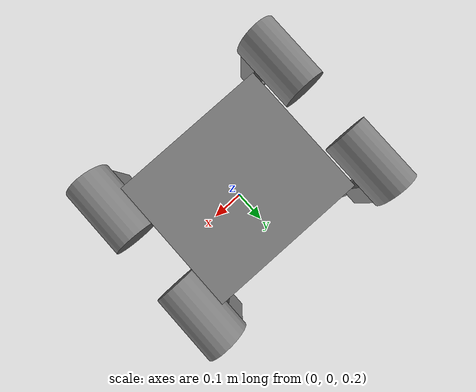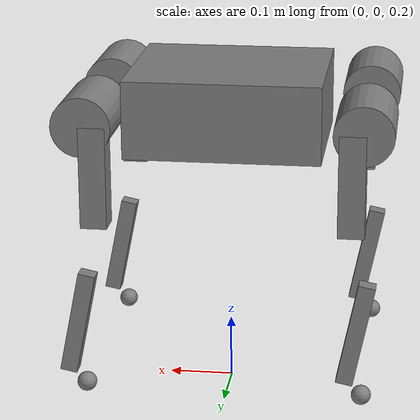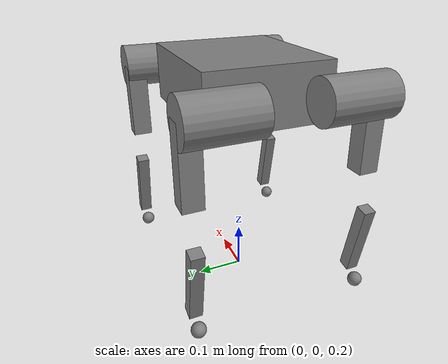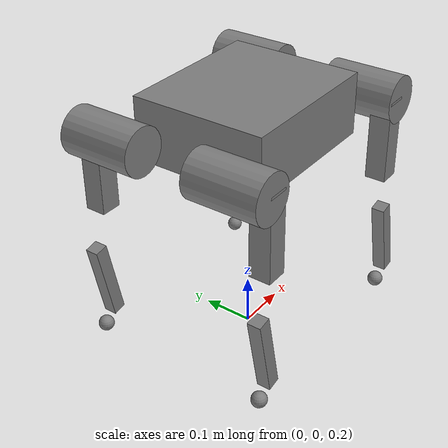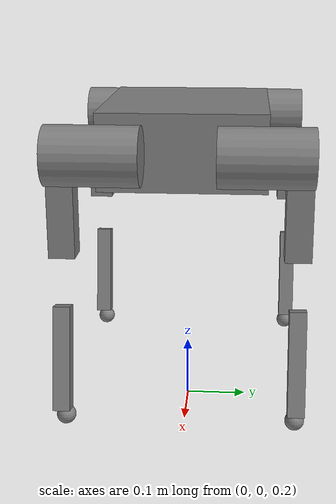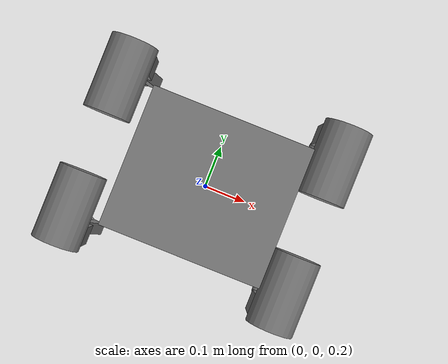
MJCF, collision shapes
<?xml version="1.0" encoding="utf-8"?>
<mujoco model="sparq">

  <compiler angle="radian" autolimits="true"/>
  <option timestep="0.002" gravity="0 0 -9.81"/>

  <default>
    <default class="visual">
      <geom type="mesh" contype="0" conaffinity="0" group="2"/>
    </default>
    <default class="collision">
      <geom contype="1" conaffinity="1" group="3"/>
      <default class="foot">
          <geom type="sphere" size="0.03" priority="1" condim="6"
              friction="0.8 0.02 0.02"/>
      </default>
    </default>
  </default>

  <asset>
    <material name="silver" rgba="0.75 0.75 0.72 1"/>
    <mesh name="FL_Hip_pitch_link_mesh" file="meshes/FL_Hip_pitch_link.stl" scale="0.001 0.001 0.001"/>
    <mesh name="FL_Hip_roll_link_mesh" file="meshes/FL_Hip_roll_link.stl" scale="0.001 0.001 0.001"/>
    <mesh name="FL_Knee_link_mesh" file="meshes/FL_Knee_link.stl" scale="0.001 0.001 0.001"/>
    <mesh name="FR_Knee_link_mesh" file="meshes/FR_Calf_link.stl" scale="0.001 0.001 0.001"/>
    <mesh name="FR_Hip_pitch_link_mesh" file="meshes/FR_Hip_pitch_link.stl" scale="0.001 0.001 0.001"/>
    <mesh name="FR_Hip_roll_link_mesh" file="meshes/FR_Hip_roll_link.stl" scale="0.001 0.001 0.001"/>
    <mesh name="RL_Hip_pitch_link_mesh" file="meshes/RL_Hip_pitch_link.stl" scale="0.001 0.001 0.001"/>
    <mesh name="RL_Hip_roll_link_mesh" file="meshes/RL_Hip_roll_link.stl" scale="0.001 0.001 0.001"/>
    <mesh name="RL_Knee_link_mesh" file="meshes/RL_Knee_link.stl" scale="0.001 0.001 0.001"/>
    <mesh name="RR_Hip_pitch_link_mesh" file="meshes/RR_Hip_pitch_link.stl" scale="0.001 0.001 0.001"/>
    <mesh name="RR_Hip_roll_link_mesh" file="meshes/RR_Hip_roll_link.stl" scale="0.001 0.001 0.001"/>
    <mesh name="RR_Knee_link_mesh" file="meshes/RR_Knee_link.stl" scale="0.001 0.001 0.001"/>
    <mesh name="base_link_mesh" file="meshes/base_link.stl" scale="0.001 0.001 0.001"/>
  </asset>

  <worldbody>
    <body name="base_link" pos="0 0 0.7" quat="1 0 0 0">
      <inertial
          pos="-0.0365223217758897 -0.00142802720953009 -0.0353784770833775"
          mass="4.20080790024601"
          fullinertia="0.028593 0.058857 0.081298 0.000372 0.000256 -5.7e-05"/>
      <freejoint/>

      <geom type="box" pos="0 0 -0.04" size="0.15 0.13 0.06" class="collision"/>
      <geom name="base_link_geom" type="mesh" mesh="base_link_mesh" material="silver" class="visual"/>
      <site name="base_link_imu" pos="0 0 0" quat="1 0 0 0" size="0.005"/>
      <site name="imu" pos="0 0 0" quat="1 0 0 0" size="0.005"/>

      <body name="FL_Hip_roll_link" pos="0.1535 0.105 -0.0345">
        <joint name="FL_HR" type="hinge" axis="1 0 0" limited="true" range="-0.698132 0.698132"/>
        <inertial pos="0.047012839260508 -0.0190648895916663 -1.01507808360213e-07" mass="0.433649965152763" fullinertia="0.000222 0.000329 0.000243 1.7e-05 0 0"/>
        <geom type="cylinder" pos="0.045 0.02 0" size="0.045 0.07" euler="1.57 0 0" class="collision"/>
        <geom name="FL_Hip_roll_link_geom" type="mesh" mesh="FL_Hip_roll_link_mesh" material="silver" class="visual"/>

        <body name="FL_Hip_pitch_link" pos="0.049 0.0025 0">
          <joint name="FL_HP" type="hinge" axis="0 1 0" limited="true" range="-1.570796 1.570796"/>
          <inertial pos="-0.00494463575772652 0.0456363406337958 -0.0345572194599785" mass="0.763721119653306" fullinertia="0.004042 0.003973 0.000679 9.1e-05 -0.000298 0.000633"/>
          <geom type="box" size="0.02 0.02 0.08" pos="-0.02 0.0675 -0.075" class="collision"/>
          <geom name="FL_Hip_pitch_link_geom" type="mesh" mesh="FL_Hip_pitch_link_mesh" material="silver" class="visual"/>

          <body name="FL_Knee_link" pos="0 0.0699 -0.21">
            <joint name="FL_KP" type="hinge" axis="0 1 0" limited="true" range="-2.5473 -0.5401"/>
            <inertial pos="0.00603961042441925 -5.01297464650108e-09 -0.0863000003888488" mass="0.197808426199686" fullinertia="0.000872 0.000891 4.5e-05 0 8.3e-05 0"/>
            <geom type="box" size="0.013 0.013 0.08" pos="0.01 0. -0.1" euler="0 -0.2 0" class="collision"/>
            <geom name="FL_Knee_link_geom" type="mesh" mesh="FL_Knee_link_mesh" material="silver" class="visual"/>

            <body name="FL_foot" pos="0 -0. -0.21">
              <inertial pos="0 0 0" mass="0.06" fullinertia="9.6e-06 9.6e-06 9.6e-06 0 0 0"/>
              <geom name="FL_foot"  pos="-0.0 0 0.01" type="sphere" size="0.015" class="foot"/>
            </body>
          </body>
        </body>
      </body>

      <body name="FR_Hip_roll_link" pos="0.1535 -0.105 -0.0345">
        <joint name="FR_HR" type="hinge" axis="1 0 0" limited="true" range="-0.698132 0.698132"/>
        <inertial pos="0.0470128391305221 0.0190648877964573 1.01099073848698e-07" mass="0.433649967108932" fullinertia="0.000222 0.000329 0.000243 -1.7e-05 0 0"/>
        <geom type="cylinder" pos="0.045 -0.02 0" size="0.045 0.07" euler="1.57 0 0" class="collision"/>
        <geom name="FR_Hip_roll_link_geom" type="mesh" mesh="FR_Hip_roll_link_mesh" material="silver" class="visual"/>

        <body name="FR_Hip_pitch_link" pos="0.049 -0.0025 0">
          <joint name="FR_HP" type="hinge" axis="0 1 0" limited="true" range="-1.570796 1.570796"/>
          <inertial pos="-0.00494444797443838 -0.0456362977911512 -0.0345572918791971" mass="0.763718251939605" fullinertia="0.004042 0.003973 0.000679 -9.1e-05 -0.000298 -0.000633"/>
          <geom type="box" size="0.02 0.02 0.08" pos="-0.02 -0.0675 -0.075" class="collision"/>
          <geom name="FR_Hip_pitch_link_geom" type="mesh" mesh="FR_Hip_pitch_link_mesh" material="silver" class="visual"/>

          <body name="FR_Knee_link" pos="0 -0.0699 -0.21">
            <joint name="FR_KP" type="hinge" axis="0 1 0" limited="true" range="-2.5473 -0.5401"/>
            <inertial pos="0.00603961042442025 -4.83426190744929e-09 -0.086300032301543" mass="0.197808426199686" fullinertia="0.000872 0.000891 4.5e-05 0 8.3e-05 0"/>
            <geom type="box" size="0.013 0.013 0.08" pos="0.01 0. -0.1" euler="0 -0.2 0" class="collision"/>
            <geom name="FR_Knee_link_geom" type="mesh" mesh="FR_Knee_link_mesh" material="silver" class="visual"/>\

            <body name="FR_foot" pos="0 -0. -0.21">
              <inertial pos="0 0 0" mass="0.06" fullinertia="9.6e-06 9.6e-06 9.6e-06 0 0 0"/>
              <geom name="FR_foot"  pos="-0.0 0 0.01" type="sphere" size="0.015" class="foot"/>
            </body>
          </body>
        </body>
      </body>

      <body name="RL_Hip_roll_link" pos="-0.1705 0.105 -0.0345">
        <joint name="RL_HR" type="hinge" axis="1 0 0" limited="true" range="-0.698132 0.698132"/>
        <inertial pos="-0.0470128390651004 -0.0190648895915225 9.63978689649814e-08" mass="0.433649965153592" fullinertia="0.000222 0.000329 0.000243 -1.7e-05 0 0"/>
        <geom type="cylinder" pos="-0.045 0.02 0" size="0.045 0.07" euler="1.57 0 0" class="collision"/>
        <geom name="RL_Hip_roll_link_geom" type="mesh" mesh="RL_Hip_roll_link_mesh" material="silver" class="visual"/>

        <body name="RL_Hip_pitch_link" pos="-0.049 0.0025 0">
          <joint name="RL_HP" type="hinge" axis="0 1 0" limited="true" range="-1.570796 1.570796"/>
          <inertial pos="-0.00494463641183884 0.0456363406337904 -0.0345572560780338" mass="0.763721119653281" fullinertia="0.004042 0.003973 0.000679 9.1e-05 -0.000298 0.000633"/>
          <geom type="box" size="0.02 0.02 0.08" pos="0.02 0.0675 -0.075" class="collision"/>
          <geom name="RL_Hip_pitch_link_geom" type="mesh" mesh="RL_Hip_pitch_link_mesh" material="silver" class="visual"/>

          <body name="RL_Knee_link" pos="0 0.0699 -0.21">
            <joint name="RL_KP" type="hinge" axis="0 1 0" limited="true" range="-2.5473 -0.5401"/>
            <inertial pos="0.00603960977030621 -5.01300542743444e-09 -0.0863000370068974" mass="0.197808426199686" fullinertia="0.000872 0.000891 4.5e-05 0 8.3e-05 0"/>
            <geom type="box" size="0.013 0.013 0.08" pos="0.01 0. -0.1" euler="0 -0.2 0" class="collision"/>
            <geom name="RL_Knee_link_geom" type="mesh" mesh="RL_Knee_link_mesh" material="silver" class="visual"/>

            <body name="RL_foot" pos="0 -0. -0.21">
              <inertial pos="0 0 0" mass="0.06" fullinertia="9.6e-06 9.6e-06 9.6e-06 0 0 0"/>
              <geom name="RL_foot"  pos="-0.0 0 0.01" type="sphere" size="0.015" class="foot"/>
            </body>
          </body>
        </body>
      </body>

      <body name="RR_Hip_roll_link" pos="-0.1705 -0.105 -0.0345">
        <joint name="RR_HR" type="hinge" axis="1 0 0" limited="true" range="-0.698132 0.698132"/>
        <inertial pos="-0.0470128389355663 0.0190648877977866 -9.67990336150915e-08" mass="0.433649967091763" fullinertia="0.000222 0.000329 0.000243 1.7e-05 0 0"/>
        <geom type="cylinder" pos="-0.045 -0.02 0" size="0.045 0.07" euler="1.57 0 0" class="collision"/>
        <geom name="RR_Hip_roll_link_geom" type="mesh" mesh="RR_Hip_roll_link_mesh" material="silver" class="visual"/>

        <body name="RR_Hip_pitch_link" pos="-0.049 -0.0025 0">
          <joint name="RR_HP" type="hinge" axis="0 1 0" limited="true" range="-1.570796 1.570796"/>
          <inertial pos="-0.00494444862855103 -0.0456362977911579 -0.0345572552611431" mass="0.763718251939605" fullinertia="0.004042 0.003973 0.000679 -9.1e-05 -0.000298 -0.000633"/>
          <geom type="box" size="0.02 0.02 0.08" pos="0.02 -0.0675 -0.075" class="collision"/>
          <geom name="RR_Hip_pitch_link_geom" type="mesh" mesh="RR_Hip_pitch_link_mesh" material="silver" class="visual"/>

          <body name="RR_Knee_link" pos="0 -0.0699 -0.21">
            <joint name="RR_KP" type="hinge" axis="0 1 0" limited="true" range="-2.5473 -0.5401"/>
            <inertial pos="0.00603960977030707 -4.83429277164937e-09 -0.0862999956834967" mass="0.197808426199686" fullinertia="0.000872 0.000891 4.5e-05 0 8.3e-05 0"/>
            <geom type="box" size="0.013 0.013 0.08" pos="0.01 0. -0.1" euler="0 -0.2 0" class="collision"/>
            <geom name="RR_Knee_link_geom" type="mesh" mesh="RR_Knee_link_mesh" material="silver" class="visual"/>

            <body name="RR_foot" pos="0 -0. -0.21">
              <inertial pos="0 0 0" mass="0.06" fullinertia="9.6e-06 9.6e-06 9.6e-06 0 0 0"/>
              <geom name="RR_foot"  pos="-0.0 0 0.01" type="sphere" size="0.015" class="foot"/>
            </body>
          </body>
        </body>
      </body>

    </body>
  </worldbody>

  <actuator>
    <motor name="FL_HR_motor" joint="FL_HR" ctrllimited="true" ctrlrange="-50 50"/>
    <motor name="FL_HP_motor" joint="FL_HP" ctrllimited="true" ctrlrange="-50 50"/>
    <motor name="FL_KP_motor" joint="FL_KP" ctrllimited="true" ctrlrange="-50 50"/>

    <motor name="FR_HR_motor" joint="FR_HR" ctrllimited="true" ctrlrange="-50 50"/>
    <motor name="FR_HP_motor" joint="FR_HP" ctrllimited="true" ctrlrange="-50 50"/>
    <motor name="FR_KP_motor" joint="FR_KP" ctrllimited="true" ctrlrange="-50 50"/>

    <motor name="RL_HR_motor" joint="RL_HR" ctrllimited="true" ctrlrange="-50 50"/>
    <motor name="RL_HP_motor" joint="RL_HP" ctrllimited="true" ctrlrange="-50 50"/>
    <motor name="RL_KP_motor" joint="RL_KP" ctrllimited="true" ctrlrange="-50 50"/>

    <motor name="RR_HR_motor" joint="RR_HR" ctrllimited="true" ctrlrange="-50 50"/>
    <motor name="RR_HP_motor" joint="RR_HP" ctrllimited="true" ctrlrange="-50 50"/>
    <motor name="RR_KP_motor" joint="RR_KP" ctrllimited="true" ctrlrange="-50 50"/>
  </actuator>

  <sensor>
    <framequat name="base_link_quat" objtype="site" objname="base_link_imu"/>
    <gyro name="base_link_gyro" site="base_link_imu"/>
    <framequat name="imu_quat" objtype="site" objname="imu"/>
    <gyro name="imu_gyro" site="imu"/>
  </sensor>

</mujoco>
